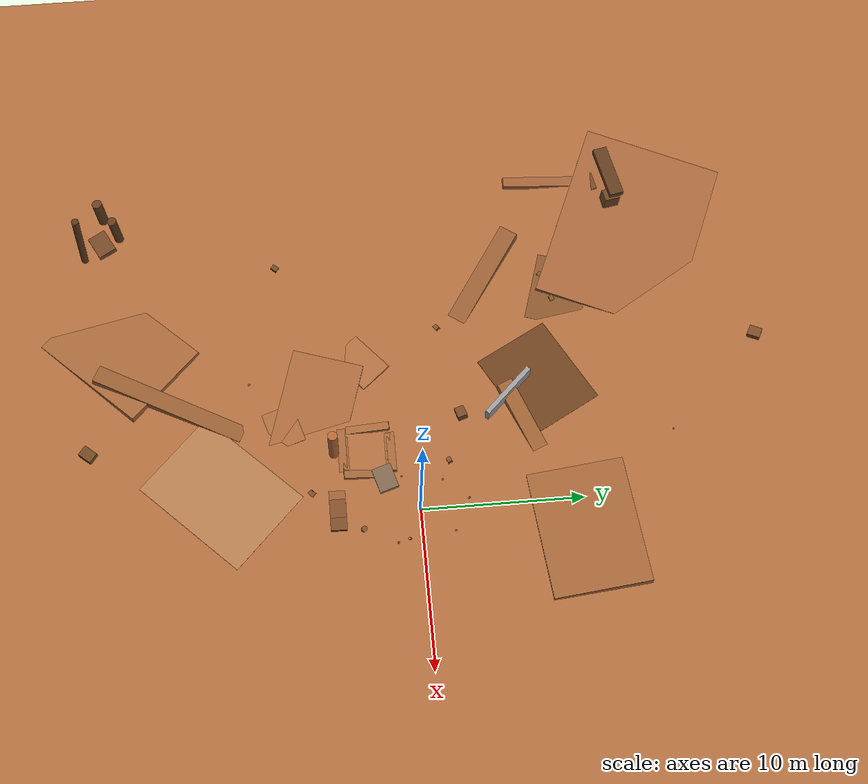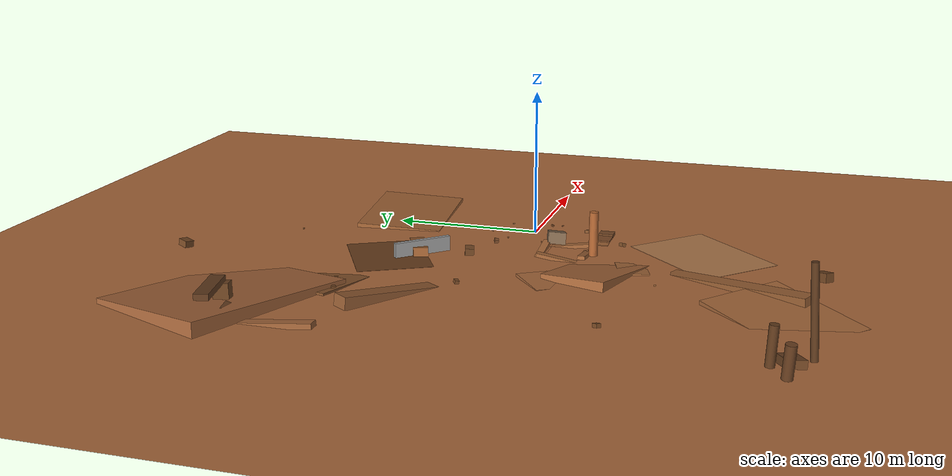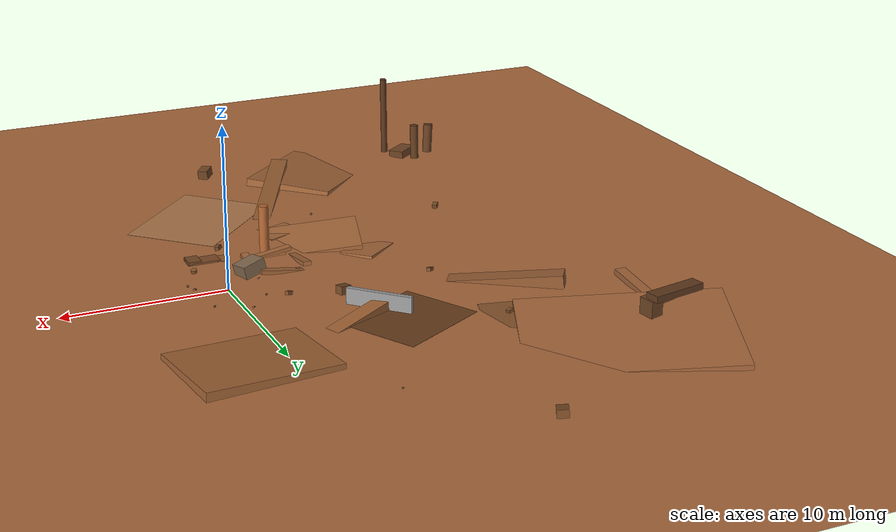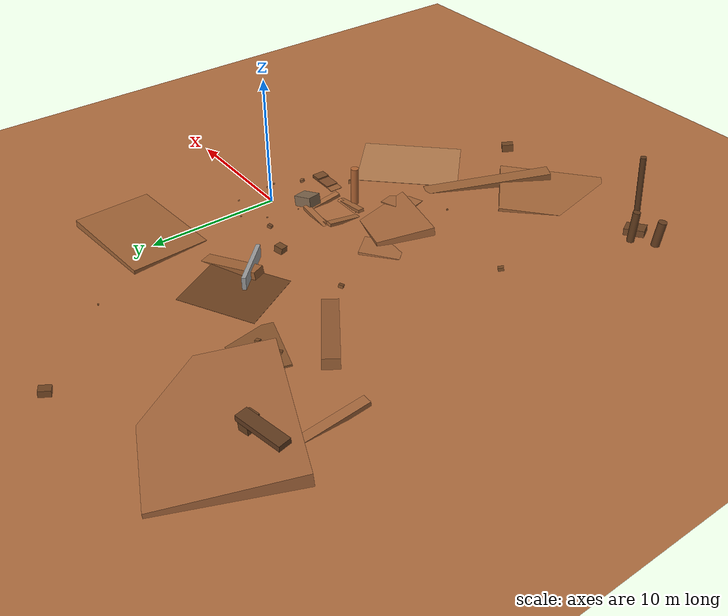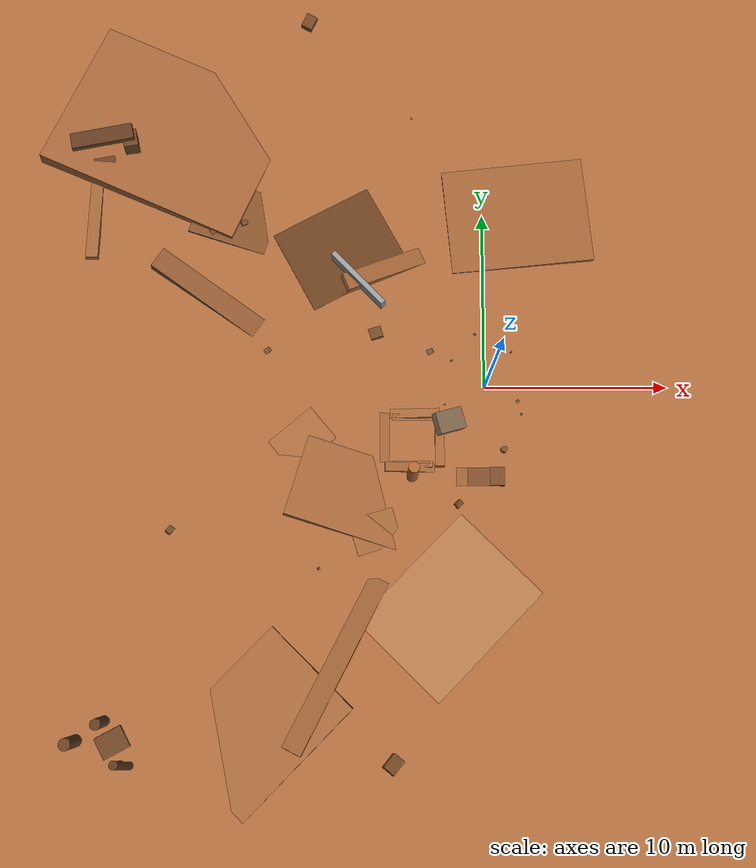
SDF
<sdf version="1.9">
 <world name="mars_test_world">
  <model name="mars_ground">
   <static>true</static>
   <link name="ground_link">
    <collision name="ground_collision">
     <geometry><plane><normal>0 0 1</normal><size>60 60</size></plane></geometry>
     <surface>
      <friction><ode><mu>1.0</mu><mu2>0.8</mu2></ode></friction>
      <contact><ode><kp>1e6</kp><kd>100</kd><max_vel>0.1</max_vel><min_depth>0.002</min_depth></ode></contact>
     </surface>
    </collision>
    <visual name="ground_visual">
     <geometry><plane><normal>0 0 1</normal><size>60 60</size></plane></geometry>
     <material>
      <ambient>0.62 0.38 0.22 1.0</ambient>
      <diffuse>0.68 0.42 0.24 1.0</diffuse>
      <specular>0.05 0.03 0.02 1.0</specular>
     </material>
    </visual>
   </link>
  </model>
  <model name="hill_2">
   <static>true</static>
   <pose>-7 -6 -0.4 -0.06 0.10 -0.3</pose>
   <link name="link">
    <collision name="col">
     <geometry><box><size>7.0 4.5 1.0</size></box></geometry>
     <surface>
      <friction><ode><mu>1.0</mu><mu2>0.8</mu2></ode></friction>
      <contact><ode><kp>1e6</kp><kd>100</kd><max_vel>0.1</max_vel><min_depth>0.002</min_depth></ode></contact>
     </surface>
    </collision>
    <visual name="vis">
     <geometry><box><size>7.0 4.5 1.0</size></box></geometry>
     <material><ambient>0.60 0.37 0.21 1</ambient><diffuse>0.66 0.41 0.23 1</diffuse></material>
    </visual>
   </link>
  </model>
  <model name="hill_3">
   <static>true</static>
   <pose>2 10 -0.5 0.04 -0.03 0.1</pose>
   <link name="link">
    <collision name="col">
     <geometry><box><size>8.0 6.0 1.5</size></box></geometry>
     <surface>
      <friction><ode><mu>1.0</mu><mu2>0.8</mu2></ode></friction>
      <contact><ode><kp>1e6</kp><kd>100</kd><max_vel>0.1</max_vel><min_depth>0.002</min_depth></ode></contact>
     </surface>
    </collision>
    <visual name="vis">
     <geometry><box><size>8.0 6.0 1.5</size></box></geometry>
     <material><ambient>0.56 0.34 0.19 1</ambient><diffuse>0.63 0.39 0.21 1</diffuse></material>
    </visual>
   </link>
  </model>
  <model name="ridge_1">
   <static>true</static>
   <pose>-5 7 -0.1 0.0 0.15 0.4</pose>
   <link name="link">
    <collision name="col">
     <geometry><box><size>6.0 1.0 0.6</size></box></geometry>
     <surface>
      <friction><ode><mu>1.0</mu><mu2>0.8</mu2></ode></friction>
      <contact><ode><kp>1e6</kp><kd>100</kd><max_vel>0.1</max_vel><min_depth>0.002</min_depth></ode></contact>
     </surface>
    </collision>
    <visual name="vis">
     <geometry><box><size>6.0 1.0 0.6</size></box></geometry>
     <material><ambient>0.55 0.33 0.18 1</ambient><diffuse>0.62 0.38 0.20 1</diffuse></material>
    </visual>
   </link>
  </model>
  <model name="crater_rim_n">
   <static>true</static>
   <pose>-4 -1.5 0.0 0.0 -0.15 0.0</pose>
   <link name="link">
    <collision name="col">
     <geometry><box><size>3.0 0.5 0.25</size></box></geometry>
     <surface>
      <friction><ode><mu>1.0</mu><mu2>0.8</mu2></ode></friction>
      <contact><ode><kp>1e6</kp><kd>100</kd><max_vel>0.1</max_vel><min_depth>0.002</min_depth></ode></contact>
     </surface>
    </collision>
    <visual name="vis">
     <geometry><box><size>3.0 0.5 0.25</size></box></geometry>
     <material><ambient>0.58 0.36 0.20 1</ambient><diffuse>0.64 0.40 0.22 1</diffuse></material>
    </visual>
   </link>
  </model>
  <model name="crater_rim_s">
   <static>true</static>
   <pose>-4 -4.5 0.0 0.0 0.15 0.0</pose>
   <link name="link">
    <collision name="col">
     <geometry><box><size>3.0 0.5 0.25</size></box></geometry>
     <surface>
      <friction><ode><mu>1.0</mu><mu2>0.8</mu2></ode></friction>
      <contact><ode><kp>1e6</kp><kd>100</kd><max_vel>0.1</max_vel><min_depth>0.002</min_depth></ode></contact>
     </surface>
    </collision>
    <visual name="vis">
     <geometry><box><size>3.0 0.5 0.25</size></box></geometry>
     <material><ambient>0.58 0.36 0.20 1</ambient><diffuse>0.64 0.40 0.22 1</diffuse></material>
    </visual>
   </link>
  </model>
  <model name="crater_rim_e">
   <static>true</static>
   <pose>-2.5 -3 0.0 -0.15 0.0 0.0</pose>
   <link name="link">
    <collision name="col">
     <geometry><box><size>0.5 3.0 0.25</size></box></geometry>
     <surface>
      <friction><ode><mu>1.0</mu><mu2>0.8</mu2></ode></friction>
      <contact><ode><kp>1e6</kp><kd>100</kd><max_vel>0.1</max_vel><min_depth>0.002</min_depth></ode></contact>
     </surface>
    </collision>
    <visual name="vis">
     <geometry><box><size>0.5 3.0 0.25</size></box></geometry>
     <material><ambient>0.58 0.36 0.20 1</ambient><diffuse>0.64 0.40 0.22 1</diffuse></material>
    </visual>
   </link>
  </model>
  <model name="crater_rim_w">
   <static>true</static>
   <pose>-5.5 -3 0.0 0.15 0.0 0.0</pose>
   <link name="link">
    <collision name="col">
     <geometry><box><size>0.5 3.0 0.25</size></box></geometry>
     <surface>
      <friction><ode><mu>1.0</mu><mu2>0.8</mu2></ode></friction>
      <contact><ode><kp>1e6</kp><kd>100</kd><max_vel>0.1</max_vel><min_depth>0.002</min_depth></ode></contact>
     </surface>
    </collision>
    <visual name="vis">
     <geometry><box><size>0.5 3.0 0.25</size></box></geometry>
     <material><ambient>0.58 0.36 0.20 1</ambient><diffuse>0.64 0.40 0.22 1</diffuse></material>
    </visual>
   </link>
  </model>
  <model name="crater_slope_n">
   <static>true</static>
   <pose>-4 -2.0 -0.12 0.25 0.0 0.0</pose>
   <link name="link">
    <collision name="col">
     <geometry><box><size>2.2 1.0 0.06</size></box></geometry>
     <surface>
      <friction><ode><mu>1.0</mu><mu2>0.8</mu2></ode></friction>
      <contact><ode><kp>1e6</kp><kd>100</kd><max_vel>0.1</max_vel><min_depth>0.002</min_depth></ode></contact>
     </surface>
    </collision>
    <visual name="vis">
     <geometry><box><size>2.2 1.0 0.06</size></box></geometry>
     <material><ambient>0.60 0.37 0.21 1</ambient><diffuse>0.66 0.41 0.23 1</diffuse></material>
    </visual>
   </link>
  </model>
  <model name="crater_slope_s">
   <static>true</static>
   <pose>-4 -4.0 -0.12 -0.25 0.0 0.0</pose>
   <link name="link">
    <collision name="col">
     <geometry><box><size>2.2 1.0 0.06</size></box></geometry>
     <surface>
      <friction><ode><mu>1.0</mu><mu2>0.8</mu2></ode></friction>
      <contact><ode><kp>1e6</kp><kd>100</kd><max_vel>0.1</max_vel><min_depth>0.002</min_depth></ode></contact>
     </surface>
    </collision>
    <visual name="vis">
     <geometry><box><size>2.2 1.0 0.06</size></box></geometry>
     <material><ambient>0.60 0.37 0.21 1</ambient><diffuse>0.66 0.41 0.23 1</diffuse></material>
    </visual>
   </link>
  </model>
  <model name="ledge_step">
   <static>true</static>
   <pose>0 -5 0.0 0.0 0.0 0.0</pose>
   <link name="link">
    <collision name="ledge_col">
     <pose>0 0 0.06 0 0 0</pose>
     <geometry><box><size>2.0 1.0 0.12</size></box></geometry>
     <surface>
      <friction><ode><mu>1.2</mu><mu2>1.0</mu2></ode></friction>
      <contact><ode><kp>1e6</kp><kd>100</kd><max_vel>0.1</max_vel><min_depth>0.002</min_depth></ode></contact>
     </surface>
    </collision>
    <visual name="ledge_vis">
     <pose>0 0 0.06 0 0 0</pose>
     <geometry><box><size>2.0 1.0 0.12</size></box></geometry>
     <material><ambient>0.45 0.28 0.14 1</ambient><diffuse>0.50 0.30 0.16 1</diffuse></material>
    </visual>
    <collision name="ledge2_col">
     <pose>0.6 0 0.12 0 0 0</pose>
     <geometry><box><size>0.8 1.0 0.24</size></box></geometry>
     <surface>
      <friction><ode><mu>1.2</mu><mu2>1.0</mu2></ode></friction>
      <contact><ode><kp>1e6</kp><kd>100</kd><max_vel>0.1</max_vel><min_depth>0.002</min_depth></ode></contact>
     </surface>
    </collision>
    <visual name="ledge2_vis">
     <pose>0.6 0 0.12 0 0 0</pose>
     <geometry><box><size>0.8 1.0 0.24</size></box></geometry>
     <material><ambient>0.42 0.26 0.13 1</ambient><diffuse>0.47 0.29 0.15 1</diffuse></material>
    </visual>
   </link>
  </model>
  <model name="ledge_approach">
   <static>true</static>
   <pose>-1.2 -5 0.0 0.0 -0.08 0.0</pose>
   <link name="link">
    <collision name="col">
     <geometry><box><size>0.8 1.0 0.04</size></box></geometry>
     <surface>
      <friction><ode><mu>1.0</mu><mu2>0.8</mu2></ode></friction>
      <contact><ode><kp>1e6</kp><kd>100</kd><max_vel>0.1</max_vel><min_depth>0.002</min_depth></ode></contact>
     </surface>
    </collision>
    <visual name="vis">
     <geometry><box><size>0.8 1.0 0.04</size></box></geometry>
     <material><ambient>0.55 0.34 0.18 1</ambient><diffuse>0.60 0.37 0.20 1</diffuse></material>
    </visual>
   </link>
  </model>
  <model name="rock_small_1">
   <static>true</static>
   <pose>1.5 2.0 0.04 0.3 0.2 0.8</pose>
   <link name="link">
    <collision name="col">
     <geometry><box><size>0.12 0.10 0.08</size></box></geometry>
     <surface>
      <friction><ode><mu>0.9</mu><mu2>0.7</mu2></ode></friction>
      <contact><ode><kp>1e6</kp><kd>100</kd><max_vel>0.1</max_vel><min_depth>0.002</min_depth></ode></contact>
     </surface>
    </collision>
    <visual name="vis">
     <geometry><box><size>0.12 0.10 0.08</size></box></geometry>
     <material><ambient>0.50 0.31 0.16 1</ambient><diffuse>0.55 0.34 0.18 1</diffuse></material>
    </visual>
   </link>
  </model>
  <model name="rock_small_2">
   <static>true</static>
   <pose>-1.8 1.5 0.03 -0.2 0.4 -0.3</pose>
   <link name="link">
    <collision name="col">
     <geometry><cylinder><radius>0.06</radius><length>0.08</length></cylinder></geometry>
     <surface>
      <friction><ode><mu>0.9</mu><mu2>0.7</mu2></ode></friction>
      <contact><ode><kp>1e6</kp><kd>100</kd><max_vel>0.1</max_vel><min_depth>0.002</min_depth></ode></contact>
     </surface>
    </collision>
    <visual name="vis">
     <geometry><cylinder><radius>0.06</radius><length>0.08</length></cylinder></geometry>
     <material><ambient>0.48 0.30 0.15 1</ambient><diffuse>0.53 0.33 0.17 1</diffuse></material>
    </visual>
   </link>
  </model>
  <model name="rock_small_3">
   <static>true</static>
   <pose>-2.2 -1.0 0.03 0.5 -0.15 0.6</pose>
   <link name="link">
    <collision name="col">
     <geometry><box><size>0.10 0.08 0.06</size></box></geometry>
     <surface>
      <friction><ode><mu>0.9</mu><mu2>0.7</mu2></ode></friction>
      <contact><ode><kp>1e6</kp><kd>100</kd><max_vel>0.1</max_vel><min_depth>0.002</min_depth></ode></contact>
     </surface>
    </collision>
    <visual name="vis">
     <geometry><box><size>0.10 0.08 0.06</size></box></geometry>
     <material><ambient>0.52 0.32 0.17 1</ambient><diffuse>0.57 0.35 0.19 1</diffuse></material>
    </visual>
   </link>
  </model>
  <model name="rock_small_4">
   <static>true</static>
   <pose>2.0 -1.5 0.03 -0.4 0.3 1.0</pose>
   <link name="link">
    <collision name="col">
     <geometry><cylinder><radius>0.07</radius><length>0.06</length></cylinder></geometry>
     <surface>
      <friction><ode><mu>0.9</mu><mu2>0.7</mu2></ode></friction>
      <contact><ode><kp>1e6</kp><kd>100</kd><max_vel>0.1</max_vel><min_depth>0.002</min_depth></ode></contact>
     </surface>
    </collision>
    <visual name="vis">
     <geometry><cylinder><radius>0.07</radius><length>0.06</length></cylinder></geometry>
     <material><ambient>0.49 0.30 0.16 1</ambient><diffuse>0.54 0.33 0.18 1</diffuse></material>
    </visual>
   </link>
  </model>
  <model name="rock_small_5">
   <static>true</static>
   <pose>-0.5 3.0 0.04 0.2 0.5 -0.7</pose>
   <link name="link">
    <collision name="col">
     <geometry><box><size>0.14 0.10 0.09</size></box></geometry>
     <surface>
      <friction><ode><mu>0.9</mu><mu2>0.7</mu2></ode></friction>
      <contact><ode><kp>1e6</kp><kd>100</kd><max_vel>0.1</max_vel><min_depth>0.002</min_depth></ode></contact>
     </surface>
    </collision>
    <visual name="vis">
     <geometry><box><size>0.14 0.10 0.09</size></box></geometry>
     <material><ambient>0.47 0.29 0.15 1</ambient><diffuse>0.52 0.32 0.17 1</diffuse></material>
    </visual>
   </link>
  </model>
  <model name="rock_med_1">
   <static>true</static>
   <pose>-3.0 2.0 0.10 0.15 -0.2 0.4</pose>
   <link name="link">
    <collision name="col">
     <geometry><box><size>0.35 0.28 0.22</size></box></geometry>
     <surface>
      <friction><ode><mu>0.9</mu><mu2>0.7</mu2></ode></friction>
      <contact><ode><kp>1e6</kp><kd>100</kd><max_vel>0.1</max_vel><min_depth>0.002</min_depth></ode></contact>
     </surface>
    </collision>
    <visual name="vis">
     <geometry><box><size>0.35 0.28 0.22</size></box></geometry>
     <material><ambient>0.44 0.27 0.14 1</ambient><diffuse>0.49 0.30 0.16 1</diffuse></material>
    </visual>
   </link>
  </model>
  <model name="rock_med_2">
   <static>true</static>
   <pose>1.0 -3.5 0.08 -0.25 0.1 -0.5</pose>
   <link name="link">
    <collision name="col">
     <geometry><cylinder><radius>0.18</radius><length>0.20</length></cylinder></geometry>
     <surface>
      <friction><ode><mu>0.9</mu><mu2>0.7</mu2></ode></friction>
      <contact><ode><kp>1e6</kp><kd>100</kd><max_vel>0.1</max_vel><min_depth>0.002</min_depth></ode></contact>
     </surface>
    </collision>
    <visual name="vis">
     <geometry><cylinder><radius>0.18</radius><length>0.20</length></cylinder></geometry>
     <material><ambient>0.46 0.29 0.15 1</ambient><diffuse>0.51 0.32 0.17 1</diffuse></material>
    </visual>
   </link>
  </model>
  <model name="rock_med_3">
   <static>true</static>
   <pose>-1.5 -6.5 0.12 0.3 0.15 0.8</pose>
   <link name="link">
    <collision name="col">
     <geometry><box><size>0.40 0.30 0.25</size></box></geometry>
     <surface>
      <friction><ode><mu>0.9</mu><mu2>0.7</mu2></ode></friction>
      <contact><ode><kp>1e6</kp><kd>100</kd><max_vel>0.1</max_vel><min_depth>0.002</min_depth></ode></contact>
     </surface>
    </collision>
    <visual name="vis">
     <geometry><box><size>0.40 0.30 0.25</size></box></geometry>
     <material><ambient>0.43 0.27 0.13 1</ambient><diffuse>0.48 0.30 0.15 1</diffuse></material>
    </visual>
   </link>
  </model>
  <model name="boulder_1">
   <static>true</static>
   <pose>-6 3 0.20 0.08 -0.1 0.3</pose>
   <link name="link">
    <collision name="col">
     <geometry><box><size>0.7 0.6 0.5</size></box></geometry>
     <surface>
      <friction><ode><mu>0.9</mu><mu2>0.7</mu2></ode></friction>
      <contact><ode><kp>1e6</kp><kd>100</kd><max_vel>0.1</max_vel><min_depth>0.002</min_depth></ode></contact>
     </surface>
    </collision>
    <visual name="vis">
     <geometry><box><size>0.7 0.6 0.5</size></box></geometry>
     <material><ambient>0.40 0.25 0.12 1</ambient><diffuse>0.45 0.28 0.14 1</diffuse></material>
    </visual>
   </link>
  </model>
  <model name="climb_rock_3">
   <static>true</static>
   <pose>1.8 -0.8 0.05 0.3 -0.2 0.7</pose>
   <link name="link">
    <collision name="col">
     <geometry><box><size>0.18 0.15 0.10</size></box></geometry>
     <surface>
      <friction><ode><mu>1.0</mu><mu2>0.8</mu2></ode></friction>
      <contact><ode><kp>1e6</kp><kd>100</kd><max_vel>0.1</max_vel><min_depth>0.002</min_depth></ode></contact>
     </surface>
    </collision>
    <visual name="vis">
     <geometry><box><size>0.18 0.15 0.10</size></box></geometry>
     <material><ambient>0.52 0.32 0.17 1</ambient><diffuse>0.57 0.35 0.19 1</diffuse></material>
    </visual>
   </link>
  </model>
  <model name="hill_6">
   <static>true</static>
   <pose>-18 15 -0.6 -0.07 0.05 -0.4</pose>
   <link name="link">
    <collision name="col">
     <geometry><box><size>12.0 9.0 1.8</size></box></geometry>
     <surface>
      <friction><ode><mu>1.0</mu><mu2>0.8</mu2></ode></friction>
      <contact><ode><kp>1e6</kp><kd>100</kd><max_vel>0.1</max_vel><min_depth>0.002</min_depth></ode></contact>
     </surface>
    </collision>
    <visual name="vis">
     <geometry><box><size>12.0 9.0 1.8</size></box></geometry>
     <material><ambient>0.59 0.36 0.21 1</ambient><diffuse>0.65 0.40 0.23 1</diffuse></material>
    </visual>
   </link>
  </model>
  <model name="hill_8">
   <static>true</static>
   <pose>-12 -18 -0.5 -0.04 -0.06 0.8</pose>
   <link name="link">
    <collision name="col">
     <geometry><box><size>8.0 6.0 1.2</size></box></geometry>
     <surface>
      <friction><ode><mu>1.0</mu><mu2>0.8</mu2></ode></friction>
      <contact><ode><kp>1e6</kp><kd>100</kd><max_vel>0.1</max_vel><min_depth>0.002</min_depth></ode></contact>
     </surface>
    </collision>
    <visual name="vis">
     <geometry><box><size>8.0 6.0 1.2</size></box></geometry>
     <material><ambient>0.58 0.36 0.20 1</ambient><diffuse>0.64 0.40 0.22 1</diffuse></material>
    </visual>
   </link>
  </model>
  <model name="ridge_3">
   <static>true</static>
   <pose>-15 5 -0.1 0.0 0.12 -0.6</pose>
   <link name="link">
    <collision name="col">
     <geometry><box><size>8.0 1.2 0.8</size></box></geometry>
     <surface>
      <friction><ode><mu>1.0</mu><mu2>0.8</mu2></ode></friction>
      <contact><ode><kp>1e6</kp><kd>100</kd><max_vel>0.1</max_vel><min_depth>0.002</min_depth></ode></contact>
     </surface>
    </collision>
    <visual name="vis">
     <geometry><box><size>8.0 1.2 0.8</size></box></geometry>
     <material><ambient>0.52 0.32 0.18 1</ambient><diffuse>0.58 0.36 0.20 1</diffuse></material>
    </visual>
   </link>
  </model>
  <model name="ridge_5">
   <static>true</static>
   <pose>-8 -15 -0.1 -0.05 0.08 1.1</pose>
   <link name="link">
    <collision name="col">
     <geometry><box><size>10.0 1.1 0.9</size></box></geometry>
     <surface>
      <friction><ode><mu>1.0</mu><mu2>0.8</mu2></ode></friction>
      <contact><ode><kp>1e6</kp><kd>100</kd><max_vel>0.1</max_vel><min_depth>0.002</min_depth></ode></contact>
     </surface>
    </collision>
    <visual name="vis">
     <geometry><box><size>10.0 1.1 0.9</size></box></geometry>
     <material><ambient>0.53 0.33 0.18 1</ambient><diffuse>0.59 0.37 0.20 1</diffuse></material>
    </visual>
   </link>
  </model>
  <model name="arch_pier_right">
   <static>true</static>
   <pose>-20 14 0.75 -0.04 0.03 0.2</pose>
   <link name="link">
    <collision name="col">
     <geometry><box><size>0.8 1.0 1.5</size></box></geometry>
     <surface>
      <friction><ode><mu>1.0</mu><mu2>0.8</mu2></ode></friction>
      <contact><ode><kp>1e6</kp><kd>100</kd><max_vel>0.1</max_vel><min_depth>0.002</min_depth></ode></contact>
     </surface>
    </collision>
    <visual name="vis">
     <geometry><box><size>0.8 1.0 1.5</size></box></geometry>
     <material><ambient>0.36 0.22 0.11 1</ambient><diffuse>0.42 0.26 0.13 1</diffuse></material>
    </visual>
   </link>
  </model>
  <model name="arch_lintel">
   <static>true</static>
   <pose>-21.5 14 1.65 0.0 0.0 0.2</pose>
   <link name="link">
    <collision name="col">
     <geometry><box><size>3.5 0.9 0.4</size></box></geometry>
     <surface>
      <friction><ode><mu>1.0</mu><mu2>0.8</mu2></ode></friction>
      <contact><ode><kp>1e6</kp><kd>100</kd><max_vel>0.1</max_vel><min_depth>0.002</min_depth></ode></contact>
     </surface>
    </collision>
    <visual name="vis">
     <geometry><box><size>3.5 0.9 0.4</size></box></geometry>
     <material><ambient>0.32 0.20 0.10 1</ambient><diffuse>0.38 0.23 0.12 1</diffuse></material>
    </visual>
   </link>
  </model>
  <model name="arch_lean_rock">
   <static>true</static>
   <pose>-21.5 13.0 0.3 0.3 0.0 0.2</pose>
   <link name="link">
    <collision name="col">
     <geometry><box><size>1.2 0.6 0.7</size></box></geometry>
     <surface>
      <friction><ode><mu>1.0</mu><mu2>0.8</mu2></ode></friction>
      <contact><ode><kp>1e6</kp><kd>100</kd><max_vel>0.1</max_vel><min_depth>0.002</min_depth></ode></contact>
     </surface>
    </collision>
    <visual name="vis">
     <geometry><box><size>1.2 0.6 0.7</size></box></geometry>
     <material><ambient>0.38 0.24 0.12 1</ambient><diffuse>0.44 0.27 0.14 1</diffuse></material>
    </visual>
   </link>
  </model>
  <model name="spire_base_rock">
   <static>true</static>
   <pose>-19.5 -19 0.25 0.1 0.1 0.5</pose>
   <link name="link">
    <collision name="col">
     <geometry><box><size>1.5 1.2 0.5</size></box></geometry>
     <surface>
      <friction><ode><mu>0.9</mu><mu2>0.7</mu2></ode></friction>
      <contact><ode><kp>1e6</kp><kd>100</kd><max_vel>0.1</max_vel><min_depth>0.002</min_depth></ode></contact>
     </surface>
    </collision>
    <visual name="vis">
     <geometry><box><size>1.5 1.2 0.5</size></box></geometry>
     <material><ambient>0.38 0.24 0.12 1</ambient><diffuse>0.44 0.27 0.14 1</diffuse></material>
    </visual>
   </link>
  </model>
  <model name="spire_1">
   <static>true</static>
   <pose>-20 -18 1.2 0.05 0.0 0.0</pose>
   <link name="link">
    <collision name="col">
     <geometry><cylinder><radius>0.28</radius><length>2.4</length></cylinder></geometry>
     <surface>
      <friction><ode><mu>1.0</mu><mu2>0.8</mu2></ode></friction>
      <contact><ode><kp>1e6</kp><kd>100</kd><max_vel>0.1</max_vel><min_depth>0.002</min_depth></ode></contact>
     </surface>
    </collision>
    <visual name="vis">
     <geometry><cylinder><radius>0.28</radius><length>2.4</length></cylinder></geometry>
     <material><ambient>0.33 0.20 0.09 1</ambient><diffuse>0.38 0.23 0.11 1</diffuse></material>
    </visual>
   </link>
  </model>
  <model name="spire_2">
   <static>true</static>
   <pose>-18.5 -20 2.75 -0.04 0.06 0.4</pose>
   <link name="link">
    <collision name="col">
     <geometry><cylinder><radius>0.22</radius><length>5.5</length></cylinder></geometry>
     <surface>
      <friction><ode><mu>1.0</mu><mu2>0.8</mu2></ode></friction>
      <contact><ode><kp>1e6</kp><kd>100</kd><max_vel>0.1</max_vel><min_depth>0.002</min_depth></ode></contact>
     </surface>
    </collision>
    <visual name="vis">
     <geometry><cylinder><radius>0.22</radius><length>5.5</length></cylinder></geometry>
     <material><ambient>0.31 0.19 0.09 1</ambient><diffuse>0.36 0.22 0.11 1</diffuse></material>
    </visual>
   </link>
  </model>
  <model name="spire_3">
   <static>true</static>
   <pose>-21.5 -19 1.0 0.08 -0.05 -0.3</pose>
   <link name="link">
    <collision name="col">
     <geometry><cylinder><radius>0.32</radius><length>2.0</length></cylinder></geometry>
     <surface>
      <friction><ode><mu>1.0</mu><mu2>0.8</mu2></ode></friction>
      <contact><ode><kp>1e6</kp><kd>100</kd><max_vel>0.1</max_vel><min_depth>0.002</min_depth></ode></contact>
     </surface>
    </collision>
    <visual name="vis">
     <geometry><cylinder><radius>0.32</radius><length>2.0</length></cylinder></geometry>
     <material><ambient>0.35 0.21 0.10 1</ambient><diffuse>0.40 0.24 0.12 1</diffuse></material>
    </visual>
   </link>
  </model>
  <model name="rf3_base">
   <static>true</static>
   <pose>-14 10 -0.06 -0.02 0.04 -0.3</pose>
   <link name="link">
    <collision name="col">
     <geometry><box><size>4.5 3.5 0.15</size></box></geometry>
     <surface>
      <friction><ode><mu>0.9</mu><mu2>0.7</mu2></ode></friction>
      <contact><ode><kp>1e6</kp><kd>100</kd><max_vel>0.1</max_vel><min_depth>0.002</min_depth></ode></contact>
     </surface>
    </collision>
    <visual name="vis">
     <geometry><box><size>4.5 3.5 0.15</size></box></geometry>
     <material><ambient>0.48 0.29 0.15 1</ambient><diffuse>0.53 0.33 0.17 1</diffuse></material>
    </visual>
   </link>
  </model>
  <model name="rf3_rock_1">
   <static>true</static>
   <pose>-13.5 9.5 0.09 0.1 0.2 0.4</pose>
   <link name="link">
    <collision name="col">
     <geometry><box><size>0.35 0.27 0.20</size></box></geometry>
     <surface>
      <friction><ode><mu>0.9</mu><mu2>0.7</mu2></ode></friction>
      <contact><ode><kp>1e6</kp><kd>100</kd><max_vel>0.1</max_vel><min_depth>0.002</min_depth></ode></contact>
     </surface>
    </collision>
    <visual name="vis">
     <geometry><box><size>0.35 0.27 0.20</size></box></geometry>
     <material><ambient>0.44 0.27 0.13 1</ambient><diffuse>0.50 0.31 0.15 1</diffuse></material>
    </visual>
   </link>
  </model>
  <model name="rf3_rock_2">
   <static>true</static>
   <pose>-14.8 10.5 0.07 -0.2 0.15 -0.6</pose>
   <link name="link">
    <collision name="col">
     <geometry><cylinder><radius>0.14</radius><length>0.17</length></cylinder></geometry>
     <surface>
      <friction><ode><mu>0.9</mu><mu2>0.7</mu2></ode></friction>
      <contact><ode><kp>1e6</kp><kd>100</kd><max_vel>0.1</max_vel><min_depth>0.002</min_depth></ode></contact>
     </surface>
    </collision>
    <visual name="vis">
     <geometry><cylinder><radius>0.14</radius><length>0.17</length></cylinder></geometry>
     <material><ambient>0.47 0.29 0.14 1</ambient><diffuse>0.53 0.32 0.16 1</diffuse></material>
    </visual>
   </link>
  </model>
  <model name="rf3_rock_3">
   <static>true</static>
   <pose>-15.2 9.0 0.10 0.25 -0.1 0.7</pose>
   <link name="link">
    <collision name="col">
     <geometry><box><size>0.40 0.30 0.22</size></box></geometry>
     <surface>
      <friction><ode><mu>0.9</mu><mu2>0.7</mu2></ode></friction>
      <contact><ode><kp>1e6</kp><kd>100</kd><max_vel>0.1</max_vel><min_depth>0.002</min_depth></ode></contact>
     </surface>
    </collision>
    <visual name="vis">
     <geometry><box><size>0.40 0.30 0.22</size></box></geometry>
     <material><ambient>0.43 0.26 0.13 1</ambient><diffuse>0.49 0.30 0.15 1</diffuse></material>
    </visual>
   </link>
  </model>
  <model name="boulder_3">
   <static>true</static>
   <pose>-10 22 0.22 0.1 -0.1 1.1</pose>
   <link name="link">
    <collision name="col">
     <geometry><box><size>0.8 0.65 0.45</size></box></geometry>
     <surface>
      <friction><ode><mu>0.9</mu><mu2>0.7</mu2></ode></friction>
      <contact><ode><kp>1e6</kp><kd>100</kd><max_vel>0.1</max_vel><min_depth>0.002</min_depth></ode></contact>
     </surface>
    </collision>
    <visual name="vis">
     <geometry><box><size>0.8 0.65 0.45</size></box></geometry>
     <material><ambient>0.40 0.25 0.12 1</ambient><diffuse>0.46 0.28 0.14 1</diffuse></material>
    </visual>
   </link>
  </model>
  <model name="boulder_5">
   <static>true</static>
   <pose>-5 -20 0.30 0.08 0.12 0.9</pose>
   <link name="link">
    <collision name="col">
     <geometry><box><size>0.9 0.7 0.60</size></box></geometry>
     <surface>
      <friction><ode><mu>0.9</mu><mu2>0.7</mu2></ode></friction>
      <contact><ode><kp>1e6</kp><kd>100</kd><max_vel>0.1</max_vel><min_depth>0.002</min_depth></ode></contact>
     </surface>
    </collision>
    <visual name="vis">
     <geometry><box><size>0.9 0.7 0.60</size></box></geometry>
     <material><ambient>0.38 0.23 0.11 1</ambient><diffuse>0.44 0.27 0.13 1</diffuse></material>
    </visual>
   </link>
  </model>
  <model name="rock_s_7">
   <static>true</static>
   <pose>-9 -10 0.03 -0.4 0.2 -0.8</pose>
   <link name="link">
    <collision name="col">
     <geometry><cylinder><radius>0.07</radius><length>0.09</length></cylinder></geometry>
     <surface>
      <friction><ode><mu>0.9</mu><mu2>0.7</mu2></ode></friction>
      <contact><ode><kp>1e6</kp><kd>100</kd><max_vel>0.1</max_vel><min_depth>0.002</min_depth></ode></contact>
     </surface>
    </collision>
    <visual name="vis">
     <geometry><cylinder><radius>0.07</radius><length>0.09</length></cylinder></geometry>
     <material><ambient>0.47 0.29 0.14 1</ambient><diffuse>0.52 0.32 0.16 1</diffuse></material>
    </visual>
   </link>
  </model>
  <model name="rock_s_9">
   <static>true</static>
   <pose>-4 16 0.03 -0.1 -0.3 0.7</pose>
   <link name="link">
    <collision name="col">
     <geometry><cylinder><radius>0.06</radius><length>0.07</length></cylinder></geometry>
     <surface>
      <friction><ode><mu>0.9</mu><mu2>0.7</mu2></ode></friction>
      <contact><ode><kp>1e6</kp><kd>100</kd><max_vel>0.1</max_vel><min_depth>0.002</min_depth></ode></contact>
     </surface>
    </collision>
    <visual name="vis">
     <geometry><cylinder><radius>0.06</radius><length>0.07</length></cylinder></geometry>
     <material><ambient>0.48 0.30 0.15 1</ambient><diffuse>0.53 0.33 0.17 1</diffuse></material>
    </visual>
   </link>
  </model>
  <model name="rock_m_5">
   <static>true</static>
   <pose>-12 2 0.10 0.2 -0.15 0.6</pose>
   <link name="link">
    <collision name="col">
     <geometry><box><size>0.36 0.28 0.22</size></box></geometry>
     <surface>
      <friction><ode><mu>0.9</mu><mu2>0.7</mu2></ode></friction>
      <contact><ode><kp>1e6</kp><kd>100</kd><max_vel>0.1</max_vel><min_depth>0.002</min_depth></ode></contact>
     </surface>
    </collision>
    <visual name="vis">
     <geometry><box><size>0.36 0.28 0.22</size></box></geometry>
     <material><ambient>0.43 0.27 0.13 1</ambient><diffuse>0.49 0.30 0.15 1</diffuse></material>
    </visual>
   </link>
  </model>
  <model name="rock_m_7">
   <static>true</static>
   <pose>-17 -8 0.11 0.1 0.2 0.9</pose>
   <link name="link">
    <collision name="col">
     <geometry><box><size>0.42 0.32 0.25</size></box></geometry>
     <surface>
      <friction><ode><mu>0.9</mu><mu2>0.7</mu2></ode></friction>
      <contact><ode><kp>1e6</kp><kd>100</kd><max_vel>0.1</max_vel><min_depth>0.002</min_depth></ode></contact>
     </surface>
    </collision>
    <visual name="vis">
     <geometry><box><size>0.42 0.32 0.25</size></box></geometry>
     <material><ambient>0.41 0.25 0.12 1</ambient><diffuse>0.47 0.29 0.14 1</diffuse></material>
    </visual>
   </link>
  </model>
  <model name="micro_bump_1">
   <static>true</static>
   <pose>-6 -8 -0.12 0.06 0.04 0.3</pose>
   <link name="link">
    <collision name="col">
     <geometry><box><size>2.5 2.0 0.25</size></box></geometry>
     <surface>
      <friction><ode><mu>1.0</mu><mu2>0.8</mu2></ode></friction>
      <contact><ode><kp>1e6</kp><kd>100</kd><max_vel>0.1</max_vel><min_depth>0.002</min_depth></ode></contact>
     </surface>
    </collision>
    <visual name="vis">
     <geometry><box><size>2.5 2.0 0.25</size></box></geometry>
     <material><ambient>0.60 0.37 0.21 1</ambient><diffuse>0.65 0.41 0.23 1</diffuse></material>
    </visual>
   </link>
  </model>
  <model name="micro_bump_3">
   <static>true</static>
   <pose>-10 -3 -0.08 0.05 -0.05 0.7</pose>
   <link name="link">
    <collision name="col">
     <geometry><box><size>3.0 2.2 0.18</size></box></geometry>
     <surface>
      <friction><ode><mu>1.0</mu><mu2>0.8</mu2></ode></friction>
      <contact><ode><kp>1e6</kp><kd>100</kd><max_vel>0.1</max_vel><min_depth>0.002</min_depth></ode></contact>
     </surface>
    </collision>
    <visual name="vis">
     <geometry><box><size>3.0 2.2 0.18</size></box></geometry>
     <material><ambient>0.61 0.38 0.22 1</ambient><diffuse>0.67 0.42 0.24 1</diffuse></material>
    </visual>
   </link>
  </model>
  <model name="gravel_patch_1">
   <static>true</static>
   <pose>-8 8 0.01 0.0 0.0 0.5</pose>
   <link name="link">
    <visual name="vis">
     <geometry><box><size>6.0 5.0 0.02</size></box></geometry>
     <material><ambient>0.38 0.22 0.10 1</ambient><diffuse>0.42 0.25 0.12 1</diffuse></material>
    </visual>
   </link>
  </model>
  <model name="dirt_patch_1">
   <static>true</static>
   <pose>-2 -12 0.01 0.0 0.0 0.8</pose>
   <link name="link">
    <visual name="vis">
     <geometry><box><size>8.0 6.0 0.02</size></box></geometry>
     <material><ambient>0.65 0.45 0.28 1</ambient><diffuse>0.70 0.48 0.30 1</diffuse></material>
    </visual>
   </link>
  </model>
  <model name="crater3_rim_e">
   <static>true</static>
   <pose>-22 10.0 0.0 -0.10 0.0 0.0</pose>
   <link name="link">
    <collision name="col">
     <geometry><box><size>0.7 5.5 0.35</size></box></geometry>
     <surface>
      <friction><ode><mu>1.0</mu><mu2>0.8</mu2></ode></friction>
      <contact><ode><kp>1e6</kp><kd>100</kd><max_vel>0.1</max_vel><min_depth>0.002</min_depth></ode></contact>
     </surface>
    </collision>
    <visual name="vis">
     <geometry><box><size>0.7 5.5 0.35</size></box></geometry>
     <material><ambient>0.57 0.35 0.20 1</ambient><diffuse>0.63 0.39 0.22 1</diffuse></material>
    </visual>
   </link>
  </model>
  <model name="slam_low_wall_2">
   <static>true</static>
   <pose>-7 6 0.5 0 0 -0.8</pose>
   <link name="link">
    <collision name="col"><geometry><box><size>4.0 0.3 1.0</size></box></geometry></collision>
    <visual name="vis">
     <geometry><box><size>4.0 0.3 1.0</size></box></geometry>
     <material><ambient>0.6 0.6 0.6 1</ambient><diffuse>0.6 0.6 0.6 1</diffuse></material>
    </visual>
   </link>
  </model>
  <model name="slam_pillar_2">
   <static>true</static>
   <pose>-4 -5 1.5 0 0 0</pose>
   <link name="link">
    <collision name="col">
     <geometry><cylinder><radius>0.3</radius><length>3.0</length></cylinder></geometry>
    </collision>
    <visual name="vis">
     <geometry><cylinder><radius>0.3</radius><length>3.0</length></cylinder></geometry>
     <material><ambient>0.5 0.3 0.1 1</ambient><diffuse>0.7 0.4 0.2 1</diffuse></material>
    </visual>
   </link>
  </model>
  <model name="slam_rock_cluster">
   <static>true</static>
   <pose>-2 -2 0.4 0.1 0.2 0.3</pose>
   <link name="link">
    <collision name="col"><geometry><box><size>1.5 1.2 0.8</size></box></geometry></collision>
    <visual name="vis">
     <geometry><box><size>1.5 1.2 0.8</size></box></geometry>
     <material><ambient>0.4 0.3 0.2 1</ambient><diffuse>0.5 0.4 0.3 1</diffuse></material>
    </visual>
   </link>
  </model>
 </world>
</sdf>
